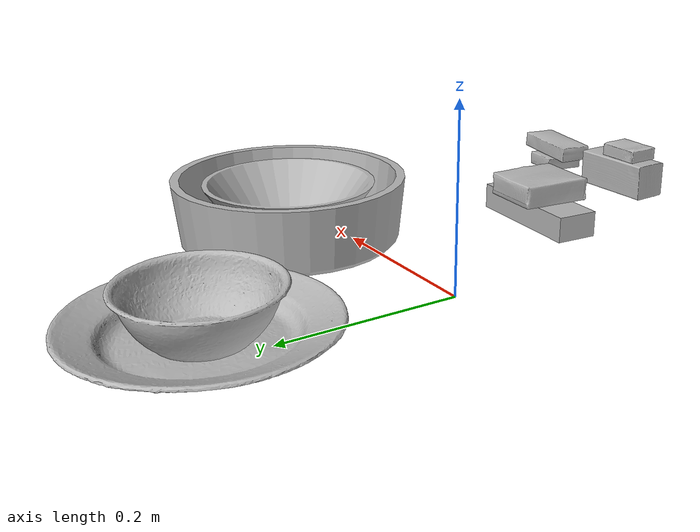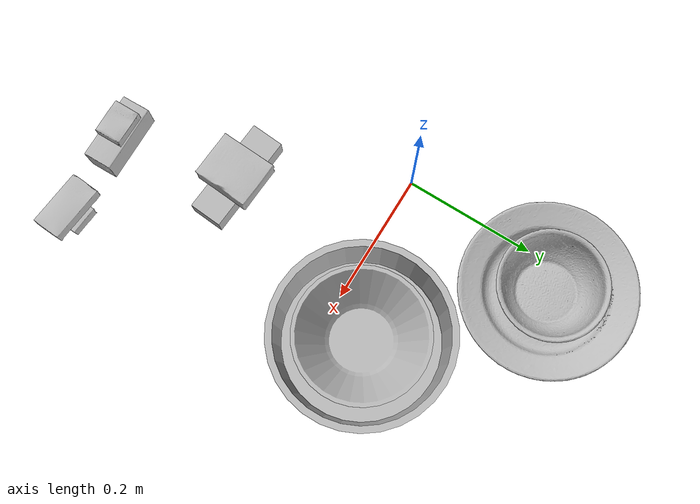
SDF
<?xml version="1.0" ?>
<sdf version="1.4">
  <world name="default">
    <light name="light1" type="point">
      <pose>0 0 1 0 0 0</pose>
      <diffuse>3 3 3 1</diffuse>
      <specular>3 3 3 1</specular>
    </light>
    <light name="light2" type="point">
      <pose>0 0.5 2 0 0 0</pose>
      <diffuse>1 1 1 1</diffuse>
      <specular>1 1 1 1</specular>
    </light>
    <light name="light3" type="point">
      <pose>0 0.5 2 0 0 0</pose>
      <diffuse>3 3 3 1</diffuse>
      <specular>3 3 3 1</specular>
    </light>
    <scene>
      <ambient>0.7 0.7 0.7</ambient>
    </scene>
    <model name="box1">
      <link name="link_box1">
        <collision name="default">
          <geometry>
            <mesh>
              <uri>model://jenga/collision_meshes/collision.obj</uri>
              <scale>1.0 1.0 1.0</scale>
            </mesh>
          </geometry>
          <surface>
            <friction>
              <ode>
                <mu>0.5</mu>
                <mu2>0.5</mu2>
              </ode>
            </friction>
          </surface>
        </collision>
        <visual name="default">
          <geometry>
            <mesh>
              <uri>model://jenga/visual_meshes/visual.dae</uri>
              <scale>1.0 1.0 1.0</scale>
            </mesh>
          </geometry>
        </visual>
        <inertial>
          <mass>0.22956150770187378</mass>
          <pose>-2.502855807051674e-07 -0.00010250010382151231 -4.0923401684267446e-05 0.0 -7.34215461761844e-07 0.0</pose>
          <inertia>
            <ixx>6.3525236e-05</ixx>
            <iyy>0.00043044525</iyy>
            <izz>0.0004595369</izz>
            <ixy>0</ixy>
            <ixz>0</ixz>
            <iyz>0</iyz>
          </inertia>
        </inertial>
      </link>
      <pose>0.13000823557376862 -0.21989817917346954 0.015000097453594208 5.619744956823777e-06 2.4160800593612193e-07 -0.07575099161418615</pose>
    </model>
    <model name="box11">
      <link name="link_box11">
        <collision name="default">
          <geometry>
            <mesh>
              <uri>model://gelatin_box/collision_meshes/collision.obj</uri>
              <scale>1.0 1.0 1.0</scale>
            </mesh>
          </geometry>
          <surface>
            <friction>
              <ode>
                <mu>0.5</mu>
                <mu2>0.5</mu2>
              </ode>
            </friction>
          </surface>
        </collision>
        <visual name="default">
          <geometry>
            <mesh>
              <uri>model://gelatin_box/visual_meshes/visual.dae</uri>
              <scale>1.0 1.0 1.0</scale>
            </mesh>
          </geometry>
        </visual>
        <inertial>
          <mass>0.23979201912879944</mass>
          <pose>0.00043196187471039593 0.00011156872642459348 -0.0003640321083366871 -0.0010503717361155602 -0.00475581776093882 0.016440559470502904</pose>
          <inertia>
            <ixx>0.00016927361</ixx>
            <iyy>0.000120911245</iyy>
            <izz>0.00025767216</izz>
            <ixy>0</ixy>
            <ixz>0</ixz>
            <iyz>0</iyz>
          </inertia>
        </inertial>
      </link>
      <pose>0.1298155039548874 -0.22003668546676636 0.04516816884279251 0.005616543919603796 -0.007290593823426629 -0.07577306139461534</pose>
    </model>
    <model name="box2">
      <link name="link_box2">
        <collision name="default">
          <geometry>
            <mesh>
              <uri>model://wood_block/collision_meshes/collision.obj</uri>
              <scale>0.5 0.5 0.5</scale>
            </mesh>
          </geometry>
          <surface>
            <friction>
              <ode>
                <mu>0.5</mu>
                <mu2>0.5</mu2>
              </ode>
            </friction>
          </surface>
        </collision>
        <visual name="default">
          <geometry>
            <mesh>
              <uri>model://wood_block/visual_meshes/visual.dae</uri>
              <scale>0.5 0.5 0.5</scale>
            </mesh>
          </geometry>
        </visual>
        <inertial>
          <mass>0.1620619148015976</mass>
          <pose>-2.9066577553749084e-06 -0.000285404734313488 0.00013204291462898254 -0.05221116986778199 -0.0051926948812571205 -0.006861377876233232</pose>
          <inertia>
            <ixx>5.421584e-05</ixx>
            <iyy>0.00017126785</iyy>
            <izz>0.00017062723</izz>
            <ixy>0</ixy>
            <ixz>0</ixz>
            <iyz>0</iyz>
          </inertia>
        </inertial>
      </link>
      <pose>0.16993311047554016 -0.39942771196365356 0.022629303857684135 -0.0052131734260969 0.005717914524519347 0.015628052222772647</pose>
    </model>
    <model name="box21">
      <link name="link_box21">
        <collision name="default">
          <geometry>
            <mesh>
              <uri>model://cracker_box/collision_meshes/collision.obj</uri>
              <scale>0.25 0.25 0.25</scale>
            </mesh>
          </geometry>
          <surface>
            <friction>
              <ode>
                <mu>0.5</mu>
                <mu2>0.5</mu2>
              </ode>
            </friction>
          </surface>
        </collision>
        <visual name="default">
          <geometry>
            <mesh>
              <uri>model://cracker_box/visual_meshes/visual.dae</uri>
              <scale>0.25 0.25 0.25</scale>
            </mesh>
          </geometry>
        </visual>
        <inertial>
          <mass>0.053346797823905945</mass>
          <pose>0.0002366035187151283 6.358561950037256e-05 -0.00042573839891701937 -0.0003162075101960104 -0.011106487737771283 0.002546795233856971</pose>
          <inertia>
            <ixx>8.4806525e-06</ixx>
            <iyy>1.40032225e-05</iyy>
            <izz>1.9983887e-05</izz>
            <ixy>0</ixy>
            <ixz>0</ixz>
            <iyz>0</iyz>
          </inertia>
        </inertial>
      </link>
      <pose>0.15987026691436768 -0.4000244736671448 0.05455233156681061 -0.017270093834068728 -0.007442249302296283 0.011688027869352325</pose>
    </model>
    <model name="box3">
      <link name="link_box3">
        <collision name="default">
          <geometry>
            <mesh>
              <uri>model://pudding_box/collision_meshes/collision.obj</uri>
              <scale>0.5 0.5 0.5</scale>
            </mesh>
          </geometry>
          <surface>
            <friction>
              <ode>
                <mu>0.5</mu>
                <mu2>0.5</mu2>
              </ode>
            </friction>
          </surface>
        </collision>
        <visual name="default">
          <geometry>
            <mesh>
              <uri>model://pudding_box/visual_meshes/visual.dae</uri>
              <scale>0.5 0.5 0.5</scale>
            </mesh>
          </geometry>
        </visual>
        <inertial>
          <mass>0.03981568291783333</mass>
          <pose>0.00024474109522998333 0.00040339428232982755 -0.00025944141088984907 0.005213101343760943 -0.0066037982384193495 0.020079821436446477</pose>
          <inertia>
            <ixx>1.1252395e-05</ixx>
            <iyy>7.5706907e-06</iyy>
            <izz>1.6617103e-05</izz>
            <ixy>0</ixy>
            <ixz>0</ixz>
            <iyz>0</iyz>
          </inertia>
        </inertial>
      </link>
      <pose>0.29972130060195923 -0.40023183822631836 0.009862716309726238 0.02251612464953402 -0.011353756681083044 -0.08507633703666227</pose>
    </model>
    <model name="box31">
      <link name="link_box31">
        <collision name="default">
          <geometry>
            <mesh>
              <uri>model://sugar_box/collision_meshes/collision.obj</uri>
              <scale>0.5 0.5 0.5</scale>
            </mesh>
          </geometry>
          <surface>
            <friction>
              <ode>
                <mu>0.5</mu>
                <mu2>0.5</mu2>
              </ode>
            </friction>
          </surface>
        </collision>
        <visual name="default">
          <geometry>
            <mesh>
              <uri>model://sugar_box/visual_meshes/visual.dae</uri>
              <scale>0.5 0.5 0.5</scale>
            </mesh>
          </geometry>
        </visual>
        <inertial>
          <mass>0.09878891706466675</mass>
          <pose>0.0005171863595023751 1.924554817378521e-05 -0.00018182402709499002 -0.0004046259508743568 0.001050663638168667 0.0026153790219137513</pose>
          <inertia>
            <ixx>2.0577656e-05</ixx>
            <iyy>6.651122e-05</iyy>
            <izz>7.9621874e-05</izz>
            <ixy>0</ixy>
            <ixz>0</ixz>
            <iyz>0</iyz>
          </inertia>
        </inertial>
      </link>
      <pose>0.29895803332328796 -0.4005665183067322 0.030521171167492867 0.014245081163221747 -0.05571448227481594 -0.08532448923765987</pose>
    </model>
    <model name="plate1">
      <link name="link_plate1">
        <collision name="default">
          <geometry>
            <mesh>
              <uri>model://pan_tefal/collision_meshes/collision.obj</uri>
              <scale>1.0 1.0 1.0</scale>
            </mesh>
          </geometry>
          <surface>
            <friction>
              <ode>
                <mu>0.5</mu>
                <mu2>0.5</mu2>
              </ode>
            </friction>
          </surface>
        </collision>
        <visual name="default">
          <geometry>
            <mesh>
              <uri>model://pan_tefal/visual_meshes/visual.dae</uri>
              <scale>1.0 1.0 1.0</scale>
            </mesh>
          </geometry>
        </visual>
        <inertial>
          <mass>1.1273940801620483</mass>
          <pose>-0.00018001534044742584 3.279306838521734e-05 -0.00851493701338768 0.0008190361817388816 -0.00033014848142065665 -0.3318599615030245</pose>
          <inertia>
            <ixx>0.007782347</ixx>
            <iyy>0.00783252</iyy>
            <izz>0.014325799</izz>
            <ixy>0</ixy>
            <ixz>0</ixz>
            <iyz>0</iyz>
          </inertia>
        </inertial>
      </link>
      <pose>0.23999997973442078 0.06000008434057236 0.03804999962449074 -6.962079392854038e-08 -1.164627547098549e-08 -0.09884197463821254</pose>
    </model>
    <model name="bowl1">
      <link name="link_bowl1">
        <collision name="default">
          <geometry>
            <mesh>
              <uri>model://bowl_a/collision_meshes/collision.obj</uri>
              <scale>1.0 1.0 1.0</scale>
            </mesh>
          </geometry>
          <surface>
            <friction>
              <ode>
                <mu>0.5</mu>
                <mu2>0.5</mu2>
              </ode>
            </friction>
          </surface>
        </collision>
        <visual name="default">
          <geometry>
            <mesh>
              <uri>model://bowl_a/visual_meshes/visual.dae</uri>
              <scale>1.0 1.0 1.0</scale>
            </mesh>
          </geometry>
        </visual>
        <inertial>
          <mass>0.3873887062072754</mass>
          <pose>0.00027867493918165565 4.731054286821745e-05 -0.0013765293406322598 -0.0009805472575270138 -0.0010938146264646796 -0.19122952428204854</pose>
          <inertia>
            <ixx>0.0011029133</ixx>
            <iyy>0.0011096848</iyy>
            <izz>0.001961574</izz>
            <ixy>0</ixy>
            <ixz>0</ixz>
            <iyz>0</iyz>
          </inertia>
        </inertial>
      </link>
      <pose>0.24000203609466553 0.05996370315551758 0.038099948316812515 0.0011543690184950368 0.00036806235100506296 -0.2539647439272336</pose>
    </model>
    <model name="plate2">
      <link name="link_plate2">
        <collision name="default">
          <geometry>
            <mesh>
              <uri>model://plate/collision_meshes/collision.obj</uri>
              <scale>1.0 1.0 1.0</scale>
            </mesh>
          </geometry>
          <surface>
            <friction>
              <ode>
                <mu>0.5</mu>
                <mu2>0.5</mu2>
              </ode>
            </friction>
          </surface>
        </collision>
        <visual name="default">
          <geometry>
            <mesh>
              <uri>model://plate/visual_meshes/visual.dae</uri>
              <scale>1.0 1.0 1.0</scale>
            </mesh>
          </geometry>
        </visual>
        <inertial>
          <mass>0.13866961002349854</mass>
          <pose>-0.0006044620531611145 0.0002782586379908025 -0.0010561972158029675 0.0022187857877866432 -0.0032254843385796767 0.452609315183835</pose>
          <inertia>
            <ixx>0.0006486992</ixx>
            <iyy>0.0006424946</iyy>
            <izz>0.0012687586</izz>
            <ixy>0</ixy>
            <ixz>0</ixz>
            <iyz>0</iyz>
          </inertia>
        </inertial>
      </link>
      <pose>0.03999998793005943 0.25 0.01373299676924944 1.7039480561123824e-09 7.78396769930055e-09 0.019028219040358268</pose>
    </model>
    <model name="bowl2">
      <link name="link_bowl2">
        <collision name="default">
          <geometry>
            <mesh>
              <uri>model://bowl/collision_meshes/collision.obj</uri>
              <scale>1.0 1.0 1.0</scale>
            </mesh>
          </geometry>
          <surface>
            <friction>
              <ode>
                <mu>0.5</mu>
                <mu2>0.5</mu2>
              </ode>
            </friction>
          </surface>
        </collision>
        <visual name="default">
          <geometry>
            <mesh>
              <uri>model://bowl/visual_meshes/visual.dae</uri>
              <scale>1.0 1.0 1.0</scale>
            </mesh>
          </geometry>
        </visual>
        <inertial>
          <mass>0.04854629561305046</mass>
          <pose>0.00020445325935725123 -0.0010302069131284952 -0.0008042645058594644 -0.015764106240563104 0.014546770392749554 0.7140394241749954</pose>
          <inertia>
            <ixx>0.00011151466</ixx>
            <iyy>0.00010902299</iyy>
            <izz>0.00018760598</izz>
            <ixy>0</ixy>
            <ixz>0</ixz>
            <iyz>0</iyz>
          </inertia>
        </inertial>
      </link>
      <pose>0.03972321003675461 0.24997104704380035 0.03185809403657913 0.0021000190192679256 -0.01020249597854747 -0.08337860732565265</pose>
    </model>
  </world>
</sdf>
